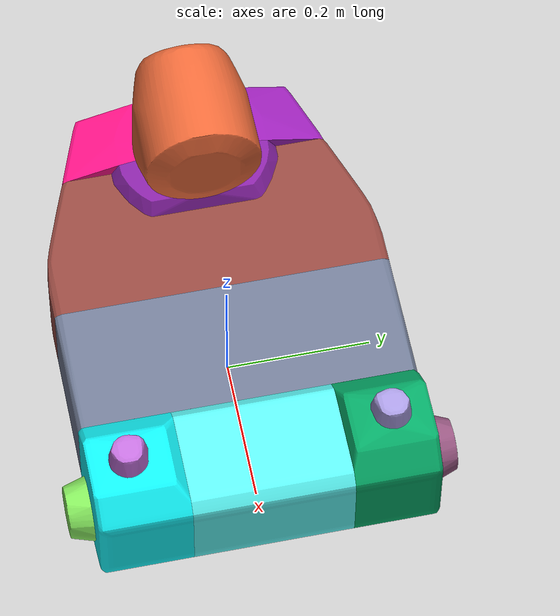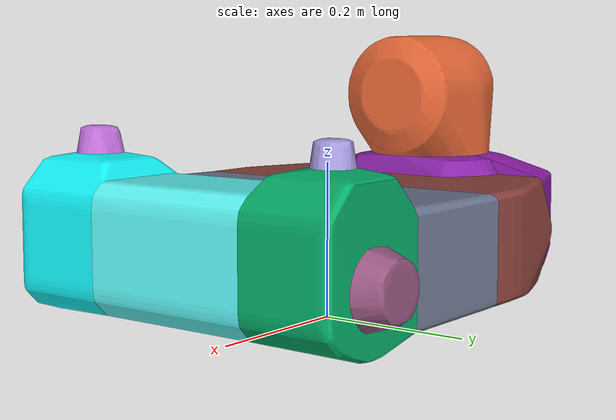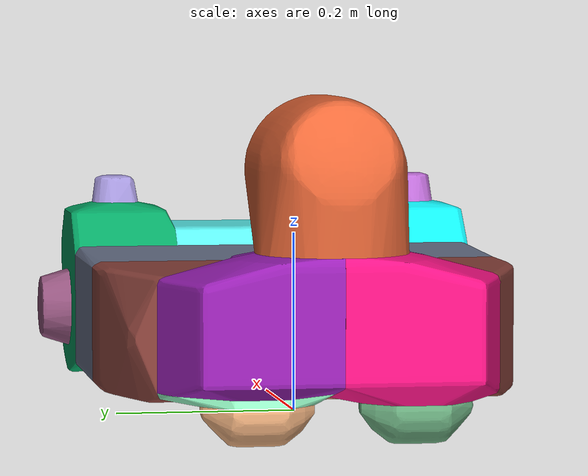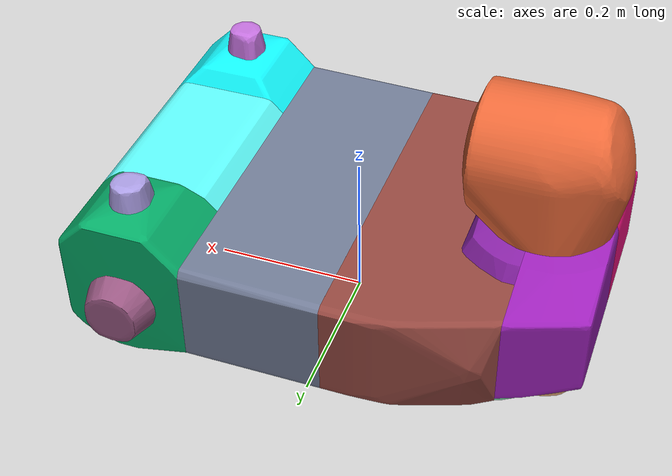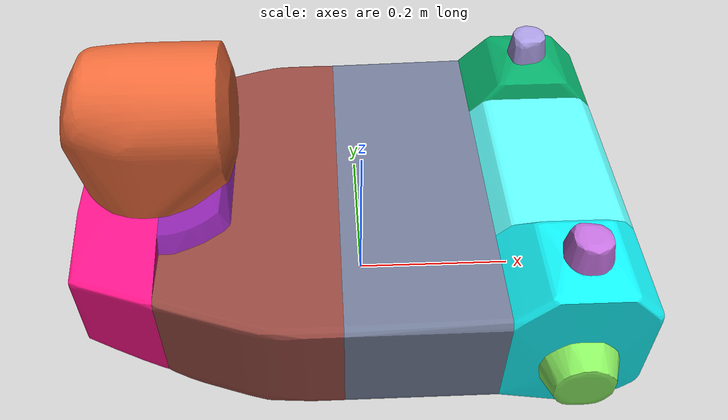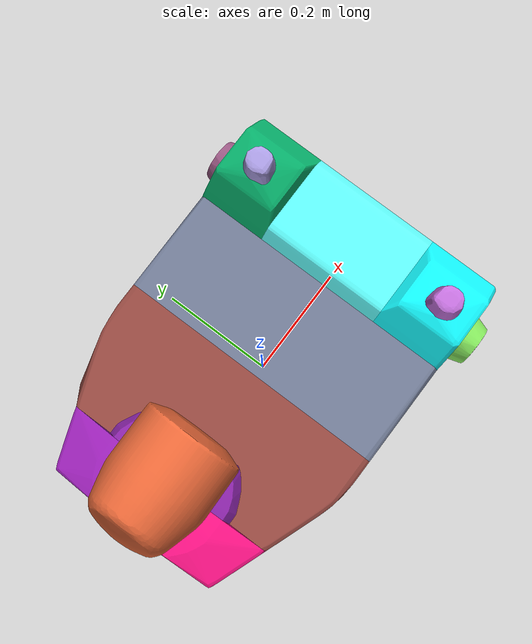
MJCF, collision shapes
<mujoco model="base">
  <default>
    <default class="visual">
      <geom group="2" type="mesh" contype="0" conaffinity="0"/>
    </default>
    <default class="collision">
      <geom group="3" type="mesh"/>
    </default>
  </default>
  <asset>
    <material name="0,0,0" specular="1.0" shininess="1.0" rgba="0.000000 0.000000 0.000000 1.000000"/>
    <material name="190,188,186" specular="1.0" shininess="0.2" rgba="0.745098 0.737255 0.729412 1.000000"/>
    <material name="237,255,168" specular="1.0" shininess="0.2" rgba="0.929412 1.000000 0.658824 1.000000"/>
    <material name="191,191,191" specular="0.0" shininess="0.3" rgba="0.749020 0.749020 0.749020 1.000000"/>
    <mesh file="base_0.obj"/>
    <mesh file="base_1.obj"/>
    <mesh file="base_2.obj"/>
    <mesh file="base_3.obj"/>
    <mesh file="base_collision_0.obj"/>
    <mesh file="base_collision_1.obj"/>
    <mesh file="base_collision_2.obj"/>
    <mesh file="base_collision_3.obj"/>
    <mesh file="base_collision_4.obj"/>
    <mesh file="base_collision_5.obj"/>
    <mesh file="base_collision_6.obj"/>
    <mesh file="base_collision_7.obj"/>
    <mesh file="base_collision_8.obj"/>
    <mesh file="base_collision_9.obj"/>
    <mesh file="base_collision_10.obj"/>
    <mesh file="base_collision_11.obj"/>
    <mesh file="base_collision_12.obj"/>
    <mesh file="base_collision_13.obj"/>
    <mesh file="base_collision_14.obj"/>
    <mesh file="base_collision_15.obj"/>
  </asset>
  <worldbody>
    <body name="base">
      <geom mesh="base_0" material="191,191,191" class="visual"/>
      <geom mesh="base_1" material="237,255,168" class="visual"/>
      <geom mesh="base_2" material="190,188,186" class="visual"/>
      <geom mesh="base_3" material="0,0,0" class="visual"/>
      <geom mesh="base_collision_0" rgba="0.9137756362247247 0.4090427220273345 0.2227302754525563 1" class="collision"/>
      <geom mesh="base_collision_1" rgba="0.43905933790038876 0.48010067903732134 0.5818592139758233 1" class="collision"/>
      <geom mesh="base_collision_2" rgba="0.5309959486699157 0.13308203089248216 0.6479867902559581 1" class="collision"/>
      <geom mesh="base_collision_3" rgba="0.5767510367165014 0.27822186152599515 0.24844865968214147 1" class="collision"/>
      <geom mesh="base_collision_4" rgba="0.5901560060043389 0.33801794433554533 0.5041382019254703 1" class="collision"/>
      <geom mesh="base_collision_5" rgba="0.43627779201375916 0.7057203439034861 0.5192552047223237 1" class="collision"/>
      <geom mesh="base_collision_6" rgba="0.01686143296976972 0.6632057138577045 0.40096911331154483 1" class="collision"/>
      <geom mesh="base_collision_7" rgba="0.07031000546197685 0.96379888817244 0.9837753186327624 1" class="collision"/>
      <geom mesh="base_collision_8" rgba="0.36540373290725225 0.9728613358694195 0.969446367179485 1" class="collision"/>
      <geom mesh="base_collision_9" rgba="0.6546790172586792 0.6028622520206246 0.8735985846641141 1" class="collision"/>
      <geom mesh="base_collision_10" rgba="0.6033844042729731 0.12405166356086406 0.7129682766611034 1" class="collision"/>
      <geom mesh="base_collision_11" rgba="0.991948843674256 0.06831806039012722 0.5278241278507176 1" class="collision"/>
      <geom mesh="base_collision_12" rgba="0.7545193120751504 0.43386994276266266 0.8525819581093529 1" class="collision"/>
      <geom mesh="base_collision_13" rgba="0.5950890717542072 0.9896028809363029 0.782578383037077 1" class="collision"/>
      <geom mesh="base_collision_14" rgba="0.5345822256194392 0.9292890644171916 0.37411309189710473 1" class="collision"/>
      <geom mesh="base_collision_15" rgba="0.940236176999698 0.697378357626453 0.5016414552325157 1" class="collision"/>
    </body>
  </worldbody>
</mujoco>
